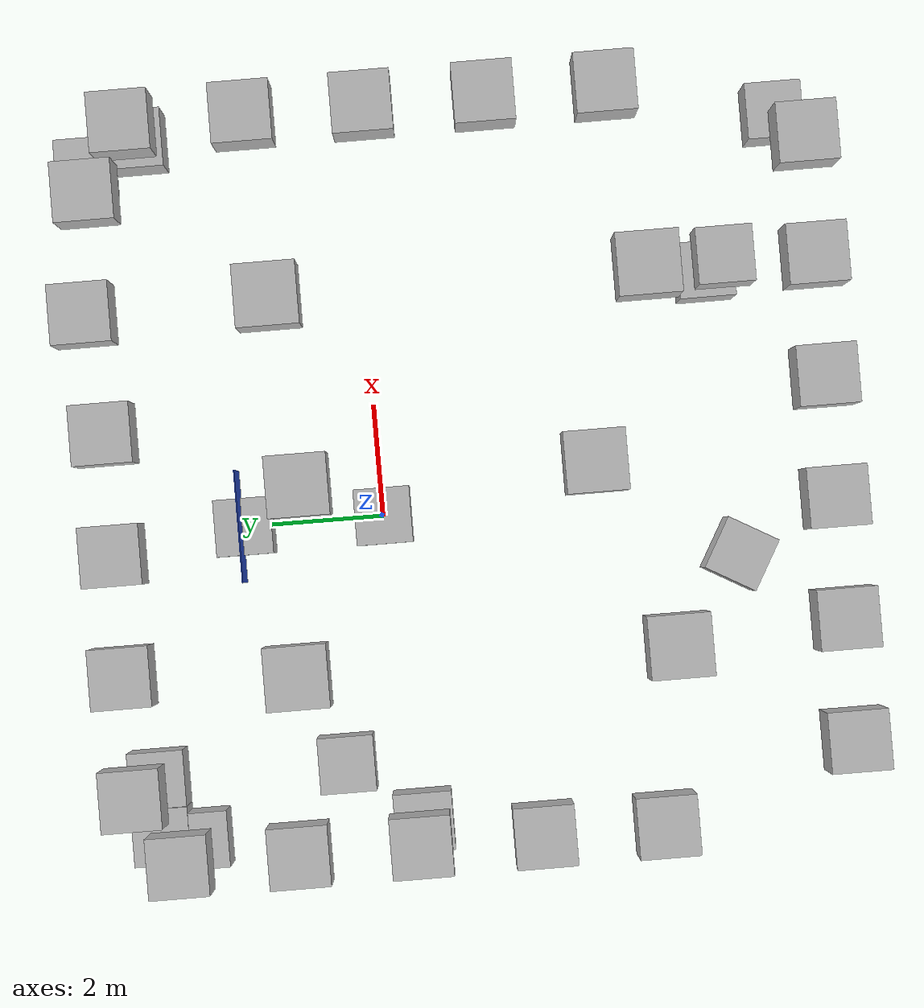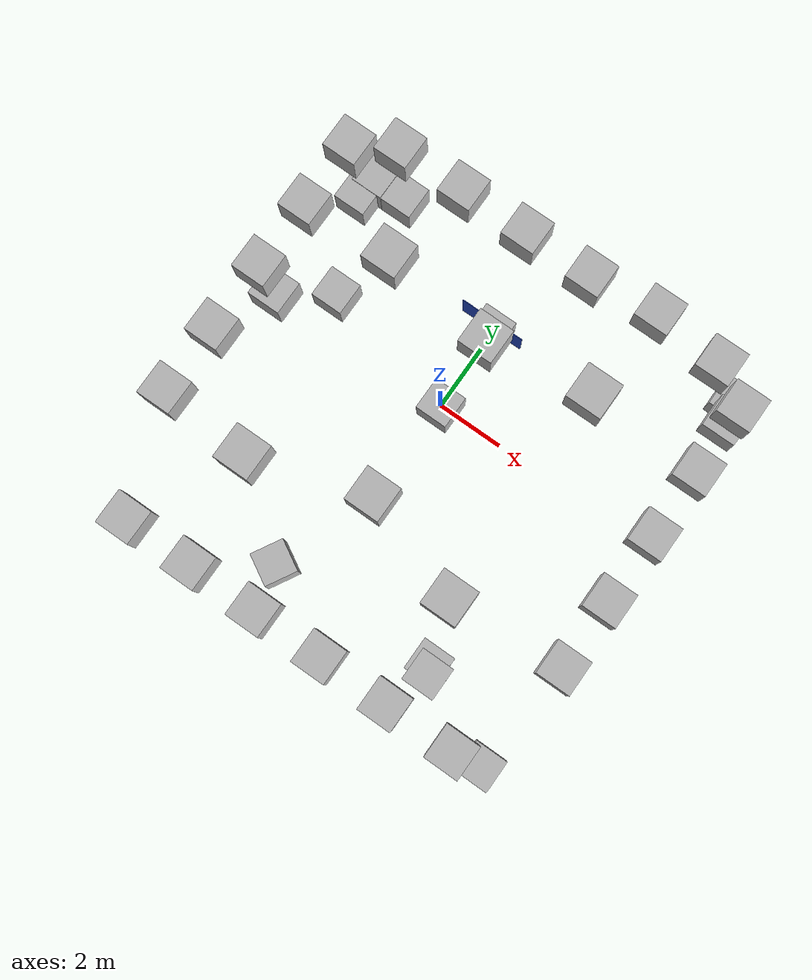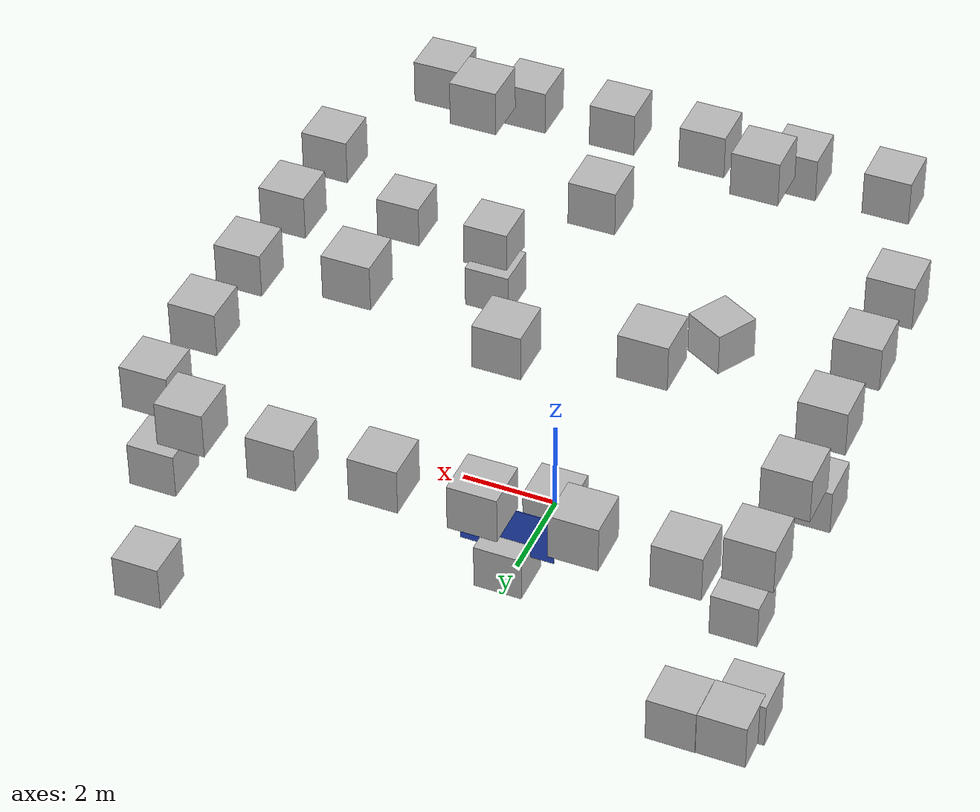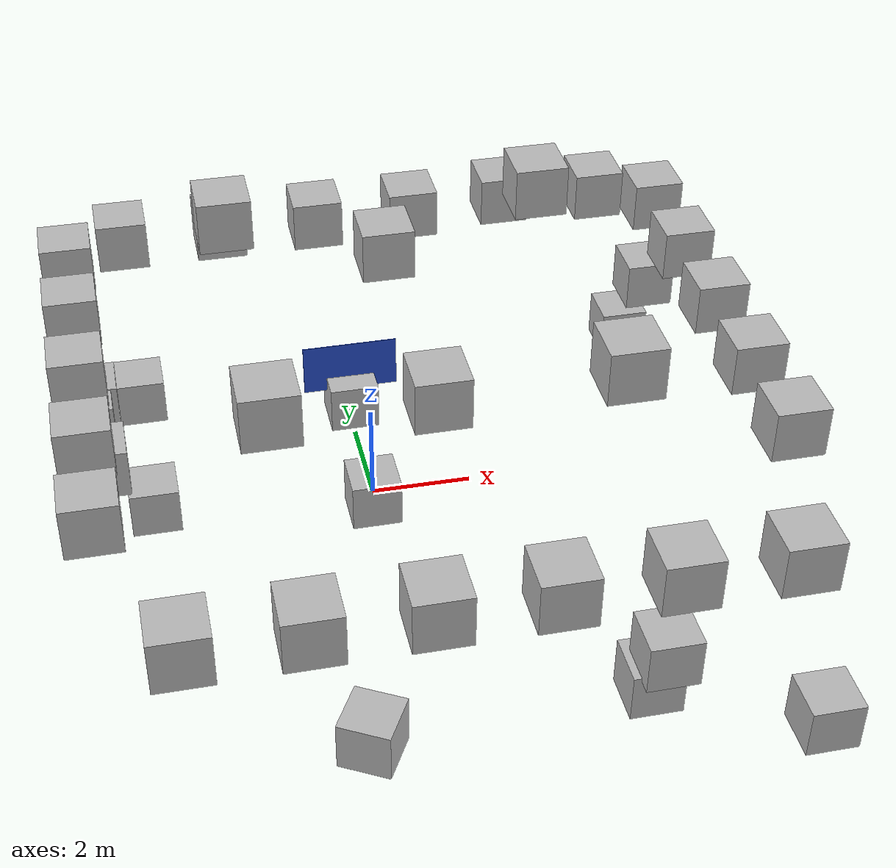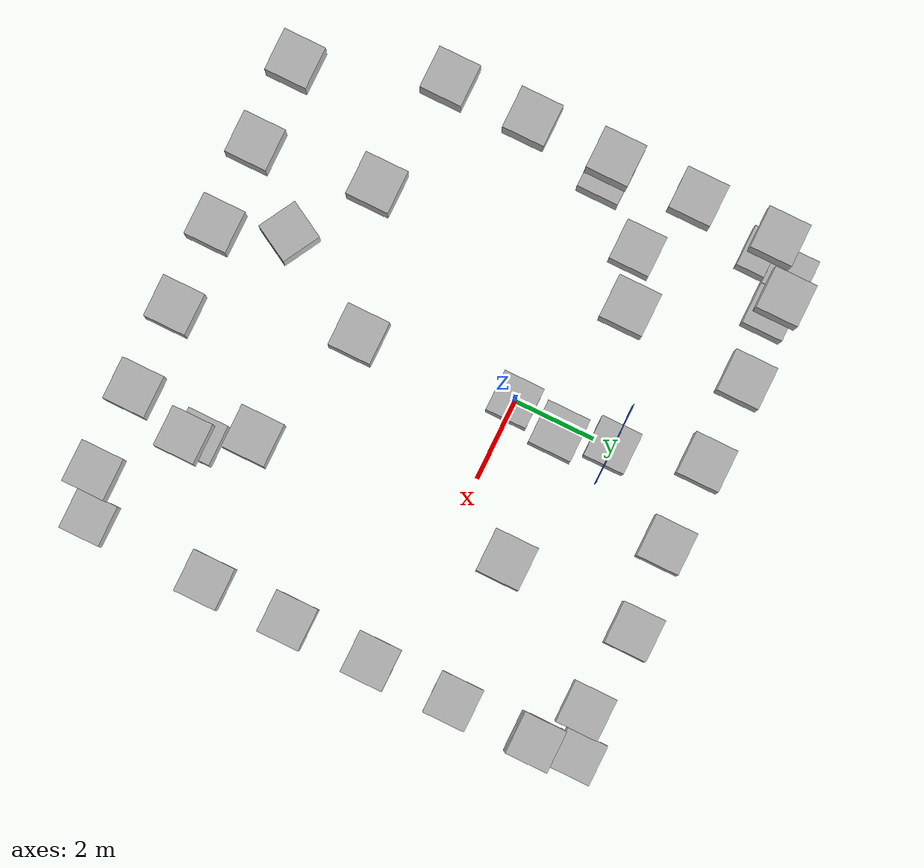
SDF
<sdf version="1.6">
 <world name="default">
  <light name="sun" type="directional">
   <pose>7.485 -12.379 17.2198 0 -0 0</pose>
   <diffuse>0.7 0.7 0.7 1</diffuse>
   <specular>0.2 0.2 0.2 1</specular>
   <direction>-0.1698 0.1 -0.3</direction>
   <attenuation>
    <range>1000</range>
    <constant>0.9</constant>
    <linear>0.01</linear>
    <quadratic>0.001</quadratic>
   </attenuation>
  </light>
  <model name="concretewall1_0">
   <static>1</static>
   <link name="concretewall::body">
    <collision name="concretewall1">
     <pose>0 0 1 0 0 0</pose>
     <geometry><box><size>2 0.4 2.0</size></box></geometry>
    </collision>
    <visual name="concretewall1"><geometry><box><size>1 1 1</size></box></geometry></visual>
    <velocity_decay><linear>0</linear><angular>0</angular></velocity_decay>
   </link>
   <pose>-5.46911 -2.30918 4.02082 0 -0 1.5708</pose>
  </model>
  <model name="concretewall1_1">
   <static>1</static>
   <link name="concretewall::body">
    <collision name="concretewall1">
     <pose>0 0 1 0 0 0</pose>
     <geometry><box><size>2 0.4 2.0</size></box></geometry>
    </collision>
    <visual name="concretewall1"><geometry><box><size>1 1 1</size></box></geometry></visual>
    <velocity_decay><linear>0</linear><angular>0</angular></velocity_decay>
   </link>
   <pose>-5.46911 -4.31171 4.02082 0 -0 1.5708</pose>
  </model>
  <model name="concretewall1_2">
   <static>1</static>
   <link name="concretewall::body">
    <collision name="concretewall1">
     <pose>0 0 1 0 0 0</pose>
     <geometry><box><size>2 0.4 2.0</size></box></geometry>
    </collision>
    <visual name="concretewall1"><geometry><box><size>1 1 1</size></box></geometry></visual>
    <velocity_decay><linear>0</linear><angular>0</angular></velocity_decay>
   </link>
   <pose>-4.343 -7.533 3.968 0 0 -3.14159</pose>
  </model>
  <model name="concretewall1_3">
   <static>1</static>
   <link name="concretewall::body">
    <collision name="concretewall1">
     <pose>0 0 1 0 0 0</pose>
     <geometry><box><size>2 0.4 2.0</size></box></geometry>
    </collision>
    <visual name="concretewall1"><geometry><box><size>1 1 1</size></box></geometry></visual>
    <velocity_decay><linear>0</linear><angular>0</angular></velocity_decay>
   </link>
   <pose>3.657 -7.533 3.968 0 0 -3.14159</pose>
  </model>
  <model name="concretewall1_4">
   <static>1</static>
   <link name="concretewall::body">
    <collision name="concretewall1">
     <pose>0 0 1 0 0 0</pose>
     <geometry><box><size>2 0.4 2.0</size></box></geometry>
    </collision>
    <visual name="concretewall1"><geometry><box><size>1 1 1</size></box></geometry></visual>
    <velocity_decay><linear>0</linear><angular>0</angular></velocity_decay>
   </link>
   <pose>5.657 -7.533 3.968 0 0 -3.14159</pose>
  </model>
  <model name="concretewall1_5">
   <static>1</static>
   <link name="concretewall::body">
    <collision name="concretewall1">
     <pose>0 0 1 0 0 0</pose>
     <geometry><box><size>2 0.4 2.0</size></box></geometry>
    </collision>
    <visual name="concretewall1"><geometry><box><size>1 1 1</size></box></geometry></visual>
    <velocity_decay><linear>0</linear><angular>0</angular></velocity_decay>
   </link>
   <pose>-4.343 4.378 3.968 0 0 -3.14159</pose>
  </model>
  <model name="woodwall_10">
   <static>1</static>
   <link name="woodwall::body">
    <collision name="woodwall-coll">
     <pose>0 0 1 0 0 0</pose>
     <geometry><box><size>2 0.4 2.0</size></box></geometry>
    </collision>
    <visual name="woodwall"><geometry><box><size>1 1 1</size></box></geometry></visual>
    <velocity_decay><linear>0</linear><angular>0</angular></velocity_decay>
   </link>
   <pose>6.748 3.697 2 0 -0 1.5708</pose>
  </model>
  <model name="woodwall_11">
   <static>1</static>
   <link name="woodwall::body">
    <collision name="woodwall-coll">
     <pose>0 0 1 0 0 0</pose>
     <geometry><box><size>2 0.4 2.0</size></box></geometry>
    </collision>
    <visual name="woodwall"><geometry><box><size>1 1 1</size></box></geometry></visual>
    <velocity_decay><linear>0</linear><angular>0</angular></velocity_decay>
   </link>
   <pose>6.748 3.697 3.977 0 -0 1.5708</pose>
  </model>
  <model name="right_vr_screen">
   <static>1</static>
   <link name="body">
    <collision name="frame">
     <pose>0 0.13 0.7 0 -0 0</pose>
     <geometry><box><size>2 0.18 1.4</size></box></geometry>
    </collision>
    <visual name="screen"><geometry><box><size>1 1 1</size></box></geometry></visual>
    <visual name="screen_glass">
     <cast_shadows>0</cast_shadows>
     <pose>0 0.02 0.75 0 -0 0</pose>
     <geometry><box><size>1.96 0.015 1.1</size></box></geometry>
     <material>
      <script><uri>file://media/materials/scripts/gazebo.material</uri><name>Gazebo/BlueGlow</name></script>
     </material>
    </visual>
    <gravity>0</gravity>
   </link>
   <pose>0 2.44 0.65 0 -0 0</pose>
  </model>
  <model name="bench_0">
   <static>1</static>
   <link name="bench::body">
    <collision name="bench-coll"><geometry><box><size>1 1 1</size></box></geometry></collision>
    <visual name="bench"><geometry><box><size>1 1 1</size></box></geometry></visual>
    <velocity_decay><linear>0</linear><angular>0</angular></velocity_decay>
   </link>
   <pose>-4.36935 1.01034 -0.280649 0 -0 0</pose>
  </model>
  <model name="woodtable_0">
   <static>1</static>
   <link name="woodtable::body">
    <collision name="woodtable-coll"><geometry><box><size>1 1 1</size></box></geometry></collision>
    <visual name="woodtable"><geometry><box><size>1 1 1</size></box></geometry></visual>
    <velocity_decay><linear>0</linear><angular>0</angular></velocity_decay>
   </link>
   <pose>3.90716 -6.09161 0.018804 0 -0 0</pose>
  </model>
  <model name="squarewindow_10">
   <static>1</static>
   <link name="squarewindow::body">
    <collision name="squarewindow-coll"><geometry><box><size>1 1 1</size></box></geometry></collision>
    <visual name="squarewindow"><geometry><box><size>1 1 1</size></box></geometry></visual>
    <velocity_decay><linear>0</linear><angular>0</angular></velocity_decay>
   </link>
   <pose>6.732 -2.29658 4.026 0 -0 1.5708</pose>
  </model>
  <model name="squarewindow_11">
   <static>1</static>
   <link name="squarewindow::body">
    <collision name="squarewindow-coll"><geometry><box><size>1 1 1</size></box></geometry></collision>
    <visual name="squarewindow"><geometry><box><size>1 1 1</size></box></geometry></visual>
    <velocity_decay><linear>0</linear><angular>0</angular></velocity_decay>
   </link>
   <pose>6.732 -4.29891 4.026 0 -0 1.5708</pose>
  </model>
  <model name="squarewindow_12">
   <static>1</static>
   <link name="squarewindow::body">
    <collision name="squarewindow-coll"><geometry><box><size>1 1 1</size></box></geometry></collision>
    <visual name="squarewindow"><geometry><box><size>1 1 1</size></box></geometry></visual>
    <velocity_decay><linear>0</linear><angular>0</angular></velocity_decay>
   </link>
   <pose>3.657 4.578 3.973 0 -0 3.14159</pose>
  </model>
  <model name="ground">
   <static>1</static>
   <link name="link">
    <collision name="collision">
     <pose>0 0 0.016 0 0 0</pose>
     <geometry><box><size>22.938 22.954 0.016</size></box></geometry>
    </collision>
    <visual name="visual">
     <cast_shadows>0</cast_shadows>
     <geometry><box><size>1 1 1</size></box></geometry>
    </visual>
    <self_collide>1</self_collide>
   </link>
  </model>
  <model name="concretepylon_1">
   <static>1</static>
   <link name="concretepylon::body">
    <collision name="concretepylon-coll">
     <pose>0 0 3 0 0 0</pose>
     <geometry><cylinder><radius>0.5</radius><length>6</length></cylinder></geometry>
    </collision>
    <visual name="highpylon"><geometry><box><size>1 1 1</size></box></geometry></visual>
    <velocity_decay><linear>0</linear><angular>0</angular></velocity_decay>
   </link>
   <pose>6.65107 4.82045 0.019561 0 -0 0</pose>
  </model>
  <model name="computer_0">
   <static>1</static>
   <link name="Computer::body">
    <collision name="Computer-coll"><geometry><box><size>1 1 1</size></box></geometry></collision>
    <visual name="Computer"><geometry><box><size>1 1 1</size></box></geometry></visual>
    <velocity_decay><linear>0</linear><angular>0</angular></velocity_decay>
   </link>
   <pose>4.0505 -6.35426 0.944646 0 0 -1.5708</pose>
  </model>
  <model name="concretewall1_6">
   <static>1</static>
   <link name="concretewall::body">
    <collision name="concretewall1">
     <pose>0 0 1 0 0 0</pose>
     <geometry><box><size>2 0.4 2.0</size></box></geometry>
    </collision>
    <visual name="concretewall1"><geometry><box><size>1 1 1</size></box></geometry></visual>
    <velocity_decay><linear>0</linear><angular>0</angular></velocity_decay>
   </link>
   <pose>5.657 4.378 3.968 0 0 -3.14159</pose>
  </model>
  <model name="squarewindow_8">
   <static>1</static>
   <link name="squarewindow::body">
    <collision name="squarewindow-coll"><geometry><box><size>1 1 1</size></box></geometry></collision>
    <visual name="squarewindow"><geometry><box><size>1 1 1</size></box></geometry></visual>
    <velocity_decay><linear>0</linear><angular>0</angular></velocity_decay>
   </link>
   <pose>6.732 -0.287 4.026 0 -0 1.5708</pose>
  </model>
  <model name="woodwall_5">
   <static>1</static>
   <link name="woodwall::body">
    <collision name="woodwall-coll">
     <pose>0 0 1 0 0 0</pose>
     <geometry><box><size>2 0.4 2.0</size></box></geometry>
    </collision>
    <visual name="woodwall"><geometry><box><size>1 1 1</size></box></geometry></visual>
    <velocity_decay><linear>0</linear><angular>0</angular></velocity_decay>
   </link>
   <pose>-5.476 3.691 3.977 0 -0 1.5708</pose>
  </model>
  <model name="squarewindow_6">
   <static>1</static>
   <link name="squarewindow::body">
    <collision name="squarewindow-coll"><geometry><box><size>1 1 1</size></box></geometry></collision>
    <visual name="squarewindow"><geometry><box><size>1 1 1</size></box></geometry></visual>
    <velocity_decay><linear>0</linear><angular>0</angular></velocity_decay>
   </link>
   <pose>-0.343 4.39 3.973 0 -0 3.14159</pose>
  </model>
  <model name="squarewindow_7">
   <static>1</static>
   <link name="squarewindow::body">
    <collision name="squarewindow-coll"><geometry><box><size>1 1 1</size></box></geometry></collision>
    <visual name="squarewindow"><geometry><box><size>1 1 1</size></box></geometry></visual>
    <velocity_decay><linear>0</linear><angular>0</angular></velocity_decay>
   </link>
   <pose>1.657 4.39 3.973 0 -0 3.14159</pose>
  </model>
  <model name="squarewindow_4">
   <static>1</static>
   <link name="squarewindow::body">
    <collision name="squarewindow-coll"><geometry><box><size>1 1 1</size></box></geometry></collision>
    <visual name="squarewindow"><geometry><box><size>1 1 1</size></box></geometry></visual>
    <velocity_decay><linear>0</linear><angular>0</angular></velocity_decay>
   </link>
   <pose>-0.343 -7.52824 3.9729 0 -0 0</pose>
  </model>
  <model name="squarewindow_5">
   <static>1</static>
   <link name="squarewindow::body">
    <collision name="squarewindow-coll"><geometry><box><size>1 1 1</size></box></geometry></collision>
    <visual name="squarewindow"><geometry><box><size>1 1 1</size></box></geometry></visual>
    <velocity_decay><linear>0</linear><angular>0</angular></velocity_decay>
   </link>
   <pose>1.657 -7.52824 3.9729 0 -0 0</pose>
  </model>
  <model name="squarewindow_2">
   <static>1</static>
   <link name="squarewindow::body">
    <collision name="squarewindow-coll"><geometry><box><size>1 1 1</size></box></geometry></collision>
    <visual name="squarewindow"><geometry><box><size>1 1 1</size></box></geometry></visual>
    <velocity_decay><linear>0</linear><angular>0</angular></velocity_decay>
   </link>
   <pose>-2.343 4.39 3.973 0 -0 3.14159</pose>
  </model>
  <model name="squarewindow_3">
   <static>1</static>
   <link name="squarewindow::body">
    <collision name="squarewindow-coll"><geometry><box><size>1 1 1</size></box></geometry></collision>
    <visual name="squarewindow"><geometry><box><size>1 1 1</size></box></geometry></visual>
    <velocity_decay><linear>0</linear><angular>0</angular></velocity_decay>
   </link>
   <pose>-2.343 -7.52824 3.9729 0 -0 0</pose>
  </model>
  <model name="squarewindow_0">
   <static>1</static>
   <link name="squarewindow::body">
    <collision name="squarewindow-coll"><geometry><box><size>1 1 1</size></box></geometry></collision>
    <visual name="squarewindow"><geometry><box><size>1 1 1</size></box></geometry></visual>
    <velocity_decay><linear>0</linear><angular>0</angular></velocity_decay>
   </link>
   <pose>-5.4732 -0.287088 4.02572 0 0 -1.5708</pose>
  </model>
  <model name="squarewindow_1">
   <static>1</static>
   <link name="squarewindow::body">
    <collision name="squarewindow-coll"><geometry><box><size>1 1 1</size></box></geometry></collision>
    <visual name="squarewindow"><geometry><box><size>1 1 1</size></box></geometry></visual>
    <velocity_decay><linear>0</linear><angular>0</angular></velocity_decay>
   </link>
   <pose>-5.4732 1.71291 4.02572 0 0 -1.5708</pose>
  </model>
  <model name="viz_poster_0">
   <static>1</static>
   <link name="vr_poster::body">
    <visual name="vr_poster"><geometry><box><size>1 1 1</size></box></geometry></visual>
   </link>
   <pose>-5.27605 -0.322974 1.92915 0 -0 0</pose>
  </model>
  <model name="concretepylon_2">
   <static>1</static>
   <link name="concretepylon::body">
    <collision name="concretepylon-coll">
     <pose>0 0 3 0 0 0</pose>
     <geometry><cylinder><radius>0.5</radius><length>6</length></cylinder></geometry>
    </collision>
    <visual name="highpylon"><geometry><box><size>1 1 1</size></box></geometry></visual>
    <velocity_decay><linear>0</linear><angular>0</angular></velocity_decay>
   </link>
   <pose>-5.35088 4.37792 0.019561 0 -0 0</pose>
  </model>
  <model name="concretepylon_3">
   <static>1</static>
   <link name="concretepylon::body">
    <collision name="concretepylon-coll">
     <pose>0 0 3 0 0 0</pose>
     <geometry><cylinder><radius>0.5</radius><length>6</length></cylinder></geometry>
    </collision>
    <visual name="highpylon"><geometry><box><size>1 1 1</size></box></geometry></visual>
    <velocity_decay><linear>0</linear><angular>0</angular></velocity_decay>
   </link>
   <pose>6.65107 -7.53909 0.019561 0 -0 0</pose>
  </model>
  <model name="sofa_0">
   <static>1</static>
   <link name="sofa::body">
    <collision name="sofa-coll"><geometry><box><size>1 1 1</size></box></geometry></collision>
    <visual name="sofa"><geometry><box><size>1 1 1</size></box></geometry></visual>
    <velocity_decay><linear>0</linear><angular>0</angular></velocity_decay>
   </link>
   <pose>-1.19702 -6.30912 -0.074259 0 -0 2.62634</pose>
  </model>
  <model name="squarewindow_9">
   <static>1</static>
   <link name="squarewindow::body">
    <collision name="squarewindow-coll"><geometry><box><size>1 1 1</size></box></geometry></collision>
    <visual name="squarewindow"><geometry><box><size>1 1 1</size></box></geometry></visual>
    <velocity_decay><linear>0</linear><angular>0</angular></velocity_decay>
   </link>
   <pose>6.73181 1.697 4.02572 0 -0 1.5708</pose>
  </model>
  <model name="top_lamp_1">
   <static>1</static>
   <link name="top_lamp::body">
    <collision name="top_lamp-coll"><geometry><box><size>1 1 1</size></box></geometry></collision>
    <visual name="top_lamp">
     <cast_shadows>0</cast_shadows>
     <geometry><box><size>1 1 1</size></box></geometry>
    </visual>
    <velocity_decay><linear>0</linear><angular>0</angular></velocity_decay>
   </link>
   <pose>0.529 1.203 5.077 0 -0 0</pose>
  </model>
  <model name="top_lamp_0">
   <static>1</static>
   <link name="top_lamp::body">
    <collision name="top_lamp-coll"><geometry><box><size>1 1 1</size></box></geometry></collision>
    <visual name="top_lamp">
     <cast_shadows>0</cast_shadows>
     <geometry><box><size>1 1 1</size></box></geometry>
    </visual>
    <velocity_decay><linear>0</linear><angular>0</angular></velocity_decay>
   </link>
   <pose>0.528672 -3.579 5.07716 0 -0 0</pose>
  </model>
  <model name="woodwall_3">
   <static>1</static>
   <link name="woodwall::body">
    <collision name="woodwall-coll">
     <pose>0 0 1 0 0 0</pose>
     <geometry><box><size>2 0.4 2.0</size></box></geometry>
    </collision>
    <visual name="woodwall"><geometry><box><size>1 1 1</size></box></geometry></visual>
    <velocity_decay><linear>0</linear><angular>0</angular></velocity_decay>
   </link>
   <pose>-5.47636 3.69107 0 0 -0 1.5708</pose>
  </model>
  <model name="bigtopwindow_0">
   <static>1</static>
   <link name="bigtopwindow::body">
    <collision name="bigtopwindow-coll"><geometry><box><size>6 6 0.082</size></box></geometry></collision>
    <visual name="bigtopwindow">
     <cast_shadows>0</cast_shadows>
     <geometry><box><size>1 1 1</size></box></geometry>
    </visual>
    <velocity_decay><linear>0</linear><angular>0</angular></velocity_decay>
   </link>
   <pose>-2.48074 -4.60158 5.97425 0 -0 0</pose>
  </model>
  <model name="bigtopwindow_1">
   <static>1</static>
   <link name="bigtopwindow::body">
    <collision name="bigtopwindow-coll"><geometry><box><size>6 6 0.082</size></box></geometry></collision>
    <visual name="bigtopwindow">
     <cast_shadows>0</cast_shadows>
     <geometry><box><size>1 1 1</size></box></geometry>
    </visual>
    <velocity_decay><linear>0</linear><angular>0</angular></velocity_decay>
   </link>
   <pose>-2.48074 1.39842 5.97425 0 -0 0</pose>
  </model>
  <model name="bigtopwindow_2">
   <static>1</static>
   <link name="bigtopwindow::body">
    <collision name="bigtopwindow-coll"><geometry><box><size>6 6 0.082</size></box></geometry></collision>
    <visual name="bigtopwindow">
     <cast_shadows>0</cast_shadows>
     <geometry><box><size>1 1 1</size></box></geometry>
    </visual>
    <velocity_decay><linear>0</linear><angular>0</angular></velocity_decay>
   </link>
   <pose>3.51926 -4.60158 5.97425 0 -0 0</pose>
  </model>
  <model name="bigtopwindow_3">
   <static>1</static>
   <link name="bigtopwindow::body">
    <collision name="bigtopwindow-coll"><geometry><box><size>6 6 0.082</size></box></geometry></collision>
    <visual name="bigtopwindow">
     <cast_shadows>0</cast_shadows>
     <geometry><box><size>1 1 1</size></box></geometry>
    </visual>
    <velocity_decay><linear>0</linear><angular>0</angular></velocity_decay>
   </link>
   <pose>3.51926 1.39842 5.97425 0 -0 0</pose>
  </model>
  <model name="concretewallhigh_6">
   <static>1</static>
   <link name="concretewallhigh::body">
    <collision name="concretewallhigh-coll">
     <pose>0 0 2 0 0 0</pose>
     <geometry><box><size>2 0.4 4.0</size></box></geometry>
    </collision>
    <visual name="concretewallhigh"><geometry><box><size>1 1 1</size></box></geometry></visual>
    <velocity_decay><linear>0</linear><angular>0</angular></velocity_decay>
   </link>
   <pose>-4.343 4.378 0.01 0 -0 0</pose>
  </model>
 </world>
</sdf>
